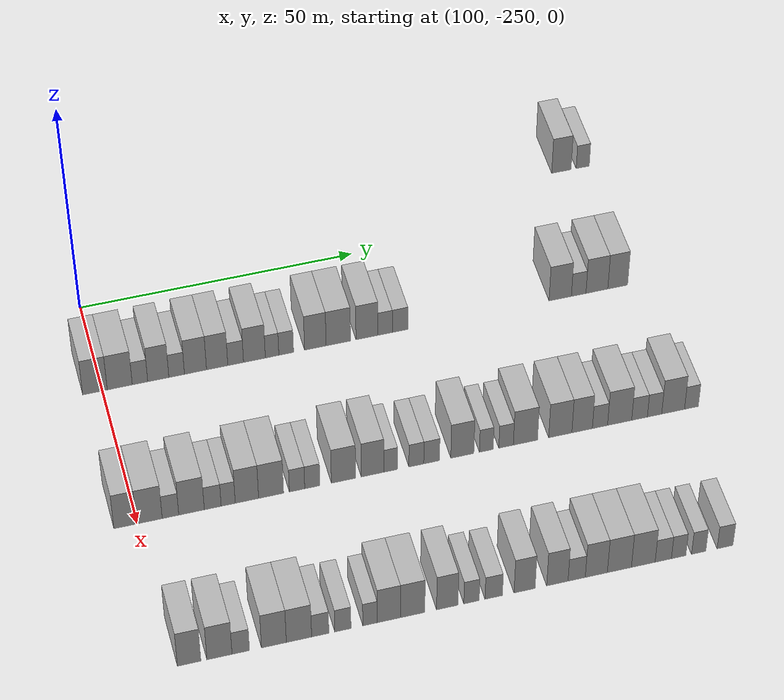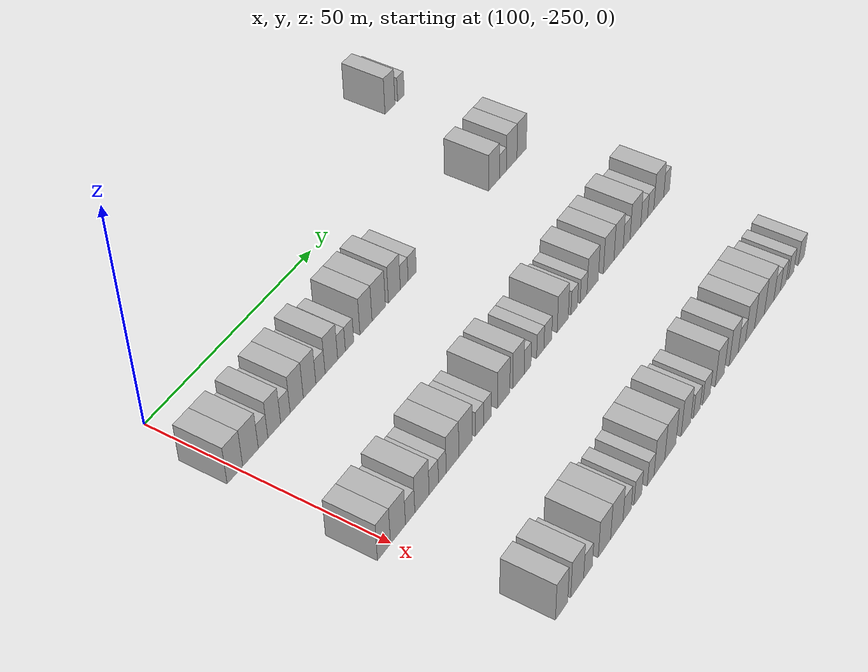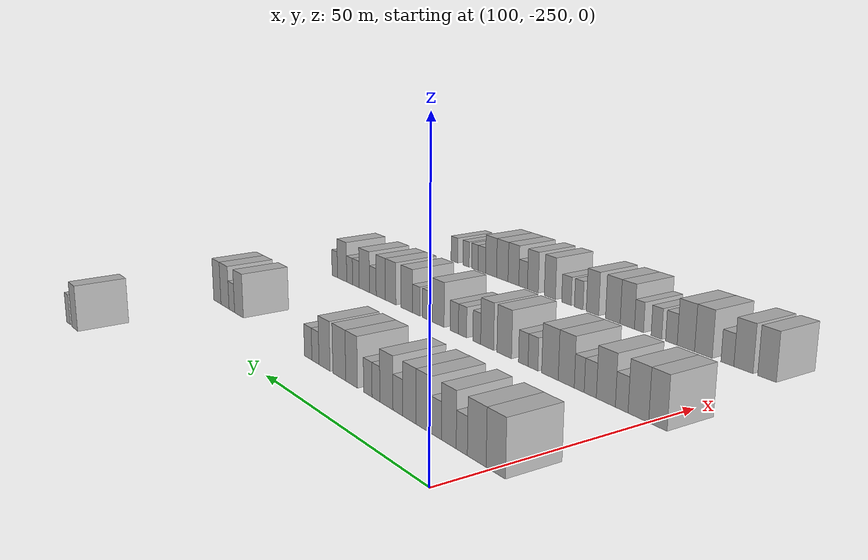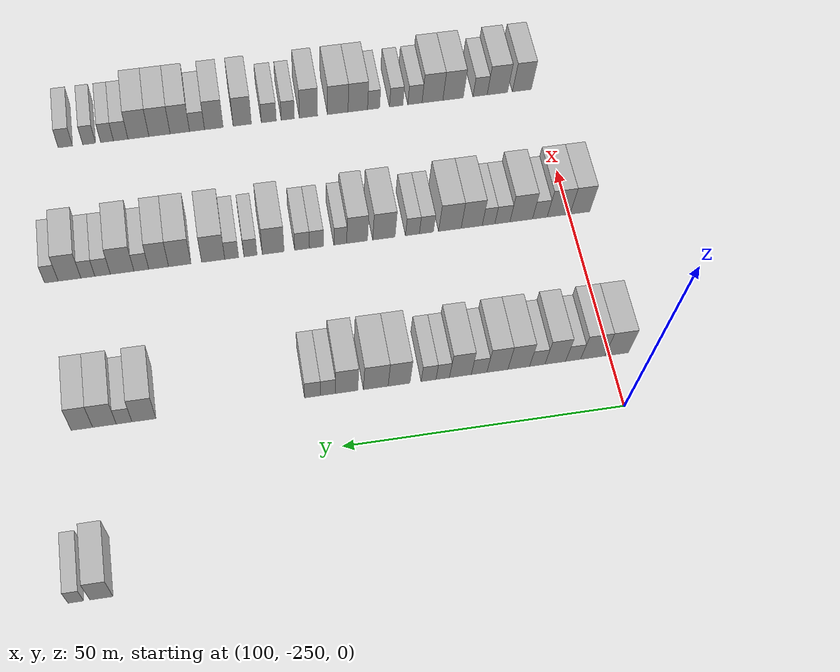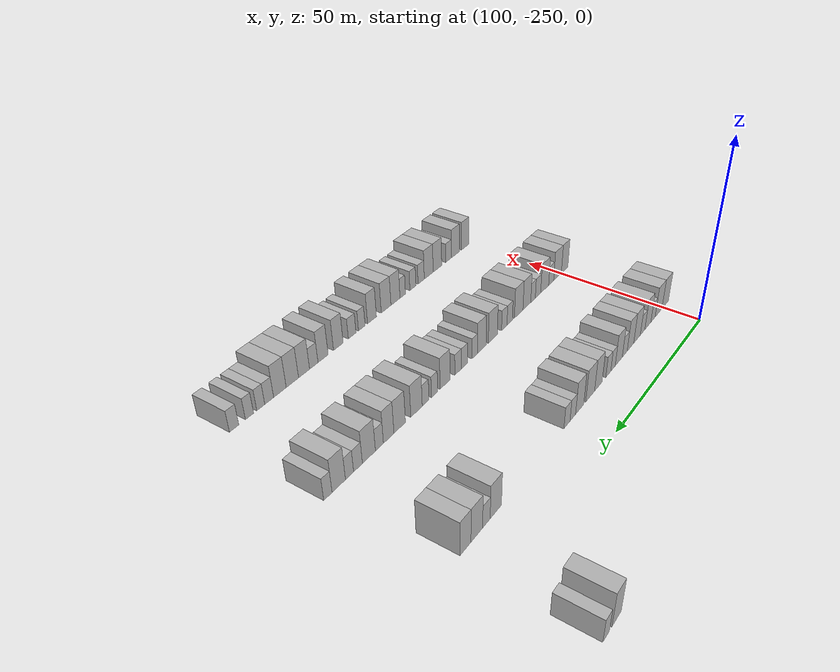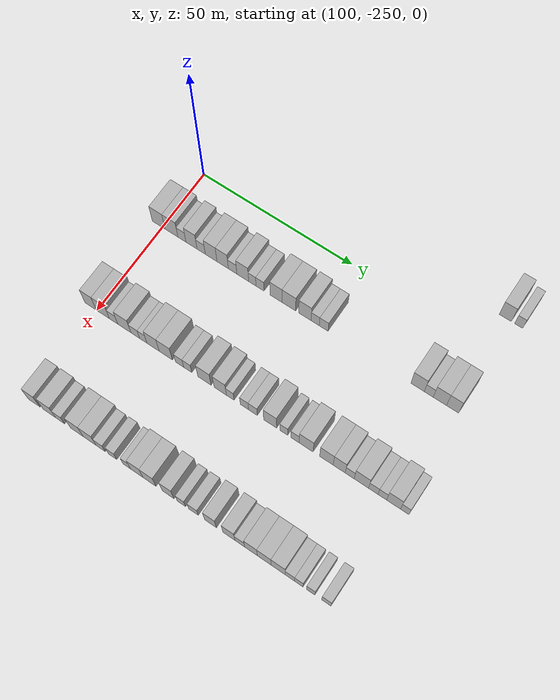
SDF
<sdf version="1.6">
 <world name="default">
  <model name="building_531">
   <static>1</static>
   <pose>85.0000 -157.1569 0 0.000000 0.000000 0.000000</pose>
   <link name="link">
    <pose>0 0 4.50 0 0 0</pose>
    <collision name="collision"><geometry><box><size>10.0000 3.7469 9.0000</size></box></geometry></collision>
    <visual name="visual">
     <cast_shadows>0</cast_shadows>
     <geometry><box><size>10.0000 3.7469 9.0000</size></box></geometry>
     <material>
      <script>
       <uri>model://HANNAS_wall/materials/scripts</uri>
       <uri>model://HANNAS_wall/materials/textures</uri>
       <name>vrc/HANNAS_wall</name>
      </script>
     </material>
    </visual>
   </link>
  </model>
  <model name="building_532">
   <static>1</static>
   <pose>85.0000 -153.0195 0 0.000000 0.000000 0.000000</pose>
   <link name="link">
    <pose>0 0 3.00 0 0 0</pose>
    <collision name="collision"><geometry><box><size>10.0000 2.5278 6.0000</size></box></geometry></collision>
    <visual name="visual">
     <cast_shadows>0</cast_shadows>
     <geometry><box><size>10.0000 2.5278 6.0000</size></box></geometry>
     <material>
      <script>
       <uri>model://HANNAS_wall/materials/scripts</uri>
       <uri>model://HANNAS_wall/materials/textures</uri>
       <name>vrc/HANNAS_wall</name>
      </script>
     </material>
    </visual>
   </link>
  </model>
  <model name="building_736">
   <static>1</static>
   <pose>115.0000 -251.2618 0 0.000000 0.000000 0.000000</pose>
   <link name="link">
    <pose>0 0 4.50 0 0 0</pose>
    <collision name="collision"><geometry><box><size>10.0000 4.3670 9.0000</size></box></geometry></collision>
    <visual name="visual">
     <cast_shadows>0</cast_shadows>
     <geometry><box><size>10.0000 4.3670 9.0000</size></box></geometry>
     <material>
      <script>
       <uri>model://HANNAS_wall/materials/scripts</uri>
       <uri>model://HANNAS_wall/materials/textures</uri>
       <name>vrc/HANNAS_wall</name>
      </script>
     </material>
    </visual>
   </link>
  </model>
  <model name="building_737">
   <static>1</static>
   <pose>115.0000 -246.8488 0 0.000000 0.000000 0.000000</pose>
   <link name="link">
    <pose>0 0 4.50 0 0 0</pose>
    <collision name="collision"><geometry><box><size>10.0000 4.4591 9.0000</size></box></geometry></collision>
    <visual name="visual">
     <cast_shadows>0</cast_shadows>
     <geometry><box><size>10.0000 4.4591 9.0000</size></box></geometry>
     <material>
      <script>
       <uri>model://HANNAS_wall/materials/scripts</uri>
       <uri>model://HANNAS_wall/materials/textures</uri>
       <name>vrc/HANNAS_wall</name>
      </script>
     </material>
    </visual>
   </link>
  </model>
  <model name="building_738">
   <static>1</static>
   <pose>115.0000 -243.2430 0 0.000000 0.000000 0.000000</pose>
   <link name="link">
    <pose>0 0 3.00 0 0 0</pose>
    <collision name="collision"><geometry><box><size>10.0000 2.7524 6.0000</size></box></geometry></collision>
    <visual name="visual">
     <cast_shadows>0</cast_shadows>
     <geometry><box><size>10.0000 2.7524 6.0000</size></box></geometry>
     <material>
      <script>
       <uri>model://HANNAS_wall/materials/scripts</uri>
       <uri>model://HANNAS_wall/materials/textures</uri>
       <name>vrc/HANNAS_wall</name>
      </script>
     </material>
    </visual>
   </link>
  </model>
  <model name="building_739">
   <static>1</static>
   <pose>115.0000 -239.9782 0 0.000000 0.000000 0.000000</pose>
   <link name="link">
    <pose>0 0 4.50 0 0 0</pose>
    <collision name="collision"><geometry><box><size>10.0000 3.7771 9.0000</size></box></geometry></collision>
    <visual name="visual">
     <cast_shadows>0</cast_shadows>
     <geometry><box><size>10.0000 3.7771 9.0000</size></box></geometry>
     <material>
      <script>
       <uri>model://HANNAS_wall/materials/scripts</uri>
       <uri>model://HANNAS_wall/materials/textures</uri>
       <name>vrc/HANNAS_wall</name>
      </script>
     </material>
    </visual>
   </link>
  </model>
  <model name="building_740">
   <static>1</static>
   <pose>115.0000 -236.6905 0 0.000000 0.000000 0.000000</pose>
   <link name="link">
    <pose>0 0 3.00 0 0 0</pose>
    <collision name="collision"><geometry><box><size>10.0000 2.7982 6.0000</size></box></geometry></collision>
    <visual name="visual">
     <cast_shadows>0</cast_shadows>
     <geometry><box><size>10.0000 2.7982 6.0000</size></box></geometry>
     <material>
      <script>
       <uri>model://HANNAS_wall/materials/scripts</uri>
       <uri>model://HANNAS_wall/materials/textures</uri>
       <name>vrc/HANNAS_wall</name>
      </script>
     </material>
    </visual>
   </link>
  </model>
  <model name="building_741">
   <static>1</static>
   <pose>115.0000 -233.3121 0 0.000000 0.000000 0.000000</pose>
   <link name="link">
    <pose>0 0 4.50 0 0 0</pose>
    <collision name="collision"><geometry><box><size>10.0000 3.9586 9.0000</size></box></geometry></collision>
    <visual name="visual">
     <cast_shadows>0</cast_shadows>
     <geometry><box><size>10.0000 3.9586 9.0000</size></box></geometry>
     <material>
      <script>
       <uri>model://HANNAS_wall/materials/scripts</uri>
       <uri>model://HANNAS_wall/materials/textures</uri>
       <name>vrc/HANNAS_wall</name>
      </script>
     </material>
    </visual>
   </link>
  </model>
  <model name="building_742">
   <static>1</static>
   <pose>115.0000 -229.4182 0 0.000000 0.000000 0.000000</pose>
   <link name="link">
    <pose>0 0 4.50 0 0 0</pose>
    <collision name="collision"><geometry><box><size>10.0000 3.8293 9.0000</size></box></geometry></collision>
    <visual name="visual">
     <cast_shadows>0</cast_shadows>
     <geometry><box><size>10.0000 3.8293 9.0000</size></box></geometry>
     <material>
      <script>
       <uri>model://HANNAS_wall/materials/scripts</uri>
       <uri>model://HANNAS_wall/materials/textures</uri>
       <name>vrc/HANNAS_wall</name>
      </script>
     </material>
    </visual>
   </link>
  </model>
  <model name="building_743">
   <static>1</static>
   <pose>115.0000 -226.0865 0 0.000000 0.000000 0.000000</pose>
   <link name="link">
    <pose>0 0 3.00 0 0 0</pose>
    <collision name="collision"><geometry><box><size>10.0000 2.8341 6.0000</size></box></geometry></collision>
    <visual name="visual">
     <cast_shadows>0</cast_shadows>
     <geometry><box><size>10.0000 2.8341 6.0000</size></box></geometry>
     <material>
      <script>
       <uri>model://HANNAS_wall/materials/scripts</uri>
       <uri>model://HANNAS_wall/materials/textures</uri>
       <name>vrc/HANNAS_wall</name>
      </script>
     </material>
    </visual>
   </link>
  </model>
  <model name="building_744">
   <static>1</static>
   <pose>115.0000 -222.6949 0 0.000000 0.000000 0.000000</pose>
   <link name="link">
    <pose>0 0 4.50 0 0 0</pose>
    <collision name="collision"><geometry><box><size>10.0000 3.9492 9.0000</size></box></geometry></collision>
    <visual name="visual">
     <cast_shadows>0</cast_shadows>
     <geometry><box><size>10.0000 3.9492 9.0000</size></box></geometry>
     <material>
      <script>
       <uri>model://HANNAS_wall/materials/scripts</uri>
       <uri>model://HANNAS_wall/materials/textures</uri>
       <name>vrc/HANNAS_wall</name>
      </script>
     </material>
    </visual>
   </link>
  </model>
  <model name="building_745">
   <static>1</static>
   <pose>115.0000 -219.5034 0 0.000000 0.000000 0.000000</pose>
   <link name="link">
    <pose>0 0 3.00 0 0 0</pose>
    <collision name="collision"><geometry><box><size>10.0000 2.4337 6.0000</size></box></geometry></collision>
    <visual name="visual">
     <cast_shadows>0</cast_shadows>
     <geometry><box><size>10.0000 2.4337 6.0000</size></box></geometry>
     <material>
      <script>
       <uri>model://HANNAS_wall/materials/scripts</uri>
       <uri>model://HANNAS_wall/materials/textures</uri>
       <name>vrc/HANNAS_wall</name>
      </script>
     </material>
    </visual>
   </link>
  </model>
  <model name="building_746">
   <static>1</static>
   <pose>115.0000 -216.9486 0 0.000000 0.000000 0.000000</pose>
   <link name="link">
    <pose>0 0 3.00 0 0 0</pose>
    <collision name="collision"><geometry><box><size>10.0000 2.6760 6.0000</size></box></geometry></collision>
    <visual name="visual">
     <cast_shadows>0</cast_shadows>
     <geometry><box><size>10.0000 2.6760 6.0000</size></box></geometry>
     <material>
      <script>
       <uri>model://HANNAS_wall/materials/scripts</uri>
       <uri>model://HANNAS_wall/materials/textures</uri>
       <name>vrc/HANNAS_wall</name>
      </script>
     </material>
    </visual>
   </link>
  </model>
  <model name="building_747">
   <static>1</static>
   <pose>115.0000 -211.6499 0 0.000000 0.000000 0.000000</pose>
   <link name="link">
    <pose>0 0 4.50 0 0 0</pose>
    <collision name="collision"><geometry><box><size>10.0000 3.9215 9.0000</size></box></geometry></collision>
    <visual name="visual">
     <cast_shadows>0</cast_shadows>
     <geometry><box><size>10.0000 3.9215 9.0000</size></box></geometry>
     <material>
      <script>
       <uri>model://HANNAS_wall/materials/scripts</uri>
       <uri>model://HANNAS_wall/materials/textures</uri>
       <name>vrc/HANNAS_wall</name>
      </script>
     </material>
    </visual>
   </link>
  </model>
  <model name="building_748">
   <static>1</static>
   <pose>115.0000 -207.4661 0 0.000000 0.000000 0.000000</pose>
   <link name="link">
    <pose>0 0 4.50 0 0 0</pose>
    <collision name="collision"><geometry><box><size>10.0000 4.4460 9.0000</size></box></geometry></collision>
    <visual name="visual">
     <cast_shadows>0</cast_shadows>
     <geometry><box><size>10.0000 4.4460 9.0000</size></box></geometry>
     <material>
      <script>
       <uri>model://HANNAS_wall/materials/scripts</uri>
       <uri>model://HANNAS_wall/materials/textures</uri>
       <name>vrc/HANNAS_wall</name>
      </script>
     </material>
    </visual>
   </link>
  </model>
  <model name="building_749">
   <static>1</static>
   <pose>115.0000 -202.2381 0 0.000000 0.000000 0.000000</pose>
   <link name="link">
    <pose>0 0 4.50 0 0 0</pose>
    <collision name="collision"><geometry><box><size>10.0000 4.0099 9.0000</size></box></geometry></collision>
    <visual name="visual">
     <cast_shadows>0</cast_shadows>
     <geometry><box><size>10.0000 4.0099 9.0000</size></box></geometry>
     <material>
      <script>
       <uri>model://HANNAS_wall/materials/scripts</uri>
       <uri>model://HANNAS_wall/materials/textures</uri>
       <name>vrc/HANNAS_wall</name>
      </script>
     </material>
    </visual>
   </link>
  </model>
  <model name="building_750">
   <static>1</static>
   <pose>115.0000 -198.9101 0 0.000000 0.000000 0.000000</pose>
   <link name="link">
    <pose>0 0 3.00 0 0 0</pose>
    <collision name="collision"><geometry><box><size>10.0000 2.6460 6.0000</size></box></geometry></collision>
    <visual name="visual">
     <cast_shadows>0</cast_shadows>
     <geometry><box><size>10.0000 2.6460 6.0000</size></box></geometry>
     <material>
      <script>
       <uri>model://HANNAS_wall/materials/scripts</uri>
       <uri>model://HANNAS_wall/materials/textures</uri>
       <name>vrc/HANNAS_wall</name>
      </script>
     </material>
    </visual>
   </link>
  </model>
  <model name="building_751">
   <static>1</static>
   <pose>115.0000 -196.1701 0 0.000000 0.000000 0.000000</pose>
   <link name="link">
    <pose>0 0 3.00 0 0 0</pose>
    <collision name="collision"><geometry><box><size>10.0000 2.8340 6.0000</size></box></geometry></collision>
    <visual name="visual">
     <cast_shadows>0</cast_shadows>
     <geometry><box><size>10.0000 2.8340 6.0000</size></box></geometry>
     <material>
      <script>
       <uri>model://HANNAS_wall/materials/scripts</uri>
       <uri>model://HANNAS_wall/materials/textures</uri>
       <name>vrc/HANNAS_wall</name>
      </script>
     </material>
    </visual>
   </link>
  </model>
  <model name="building_752">
   <static>1</static>
   <pose>115.0000 -166.4770 0 0.000000 0.000000 0.000000</pose>
   <link name="link">
    <pose>0 0 4.50 0 0 0</pose>
    <collision name="collision"><geometry><box><size>10.0000 4.1840 9.0000</size></box></geometry></collision>
    <visual name="visual">
     <cast_shadows>0</cast_shadows>
     <geometry><box><size>10.0000 4.1840 9.0000</size></box></geometry>
     <material>
      <script>
       <uri>model://HANNAS_wall/materials/scripts</uri>
       <uri>model://HANNAS_wall/materials/textures</uri>
       <name>vrc/HANNAS_wall</name>
      </script>
     </material>
    </visual>
   </link>
  </model>
  <model name="building_753">
   <static>1</static>
   <pose>115.0000 -163.0198 0 0.000000 0.000000 0.000000</pose>
   <link name="link">
    <pose>0 0 3.00 0 0 0</pose>
    <collision name="collision"><geometry><box><size>10.0000 2.7303 6.0000</size></box></geometry></collision>
    <visual name="visual">
     <cast_shadows>0</cast_shadows>
     <geometry><box><size>10.0000 2.7303 6.0000</size></box></geometry>
     <material>
      <script>
       <uri>model://HANNAS_wall/materials/scripts</uri>
       <uri>model://HANNAS_wall/materials/textures</uri>
       <name>vrc/HANNAS_wall</name>
      </script>
     </material>
    </visual>
   </link>
  </model>
  <model name="building_754">
   <static>1</static>
   <pose>115.0000 -159.6044 0 0.000000 0.000000 0.000000</pose>
   <link name="link">
    <pose>0 0 4.50 0 0 0</pose>
    <collision name="collision"><geometry><box><size>10.0000 4.1006 9.0000</size></box></geometry></collision>
    <visual name="visual">
     <cast_shadows>0</cast_shadows>
     <geometry><box><size>10.0000 4.1006 9.0000</size></box></geometry>
     <material>
      <script>
       <uri>model://HANNAS_wall/materials/scripts</uri>
       <uri>model://HANNAS_wall/materials/textures</uri>
       <name>vrc/HANNAS_wall</name>
      </script>
     </material>
    </visual>
   </link>
  </model>
  <model name="building_755">
   <static>1</static>
   <pose>115.0000 -155.6981 0 0.000000 0.000000 0.000000</pose>
   <link name="link">
    <pose>0 0 4.50 0 0 0</pose>
    <collision name="collision"><geometry><box><size>10.0000 3.7119 9.0000</size></box></geometry></collision>
    <visual name="visual">
     <cast_shadows>0</cast_shadows>
     <geometry><box><size>10.0000 3.7119 9.0000</size></box></geometry>
     <material>
      <script>
       <uri>model://HANNAS_wall/materials/scripts</uri>
       <uri>model://HANNAS_wall/materials/textures</uri>
       <name>vrc/HANNAS_wall</name>
      </script>
     </material>
    </visual>
   </link>
  </model>
  <model name="building_964">
   <static>1</static>
   <pose>145.0000 -252.0776 0 0.000000 0.000000 0.000000</pose>
   <link name="link">
    <pose>0 0 4.50 0 0 0</pose>
    <collision name="collision"><geometry><box><size>10.0000 3.8484 9.0000</size></box></geometry></collision>
    <visual name="visual">
     <cast_shadows>0</cast_shadows>
     <geometry><box><size>10.0000 3.8484 9.0000</size></box></geometry>
     <material>
      <script>
       <uri>model://HANNAS_wall/materials/scripts</uri>
       <uri>model://HANNAS_wall/materials/textures</uri>
       <name>vrc/HANNAS_wall</name>
      </script>
     </material>
    </visual>
   </link>
  </model>
  <model name="building_965">
   <static>1</static>
   <pose>145.0000 -247.9197 0 0.000000 0.000000 0.000000</pose>
   <link name="link">
    <pose>0 0 4.50 0 0 0</pose>
    <collision name="collision"><geometry><box><size>10.0000 4.4674 9.0000</size></box></geometry></collision>
    <visual name="visual">
     <cast_shadows>0</cast_shadows>
     <geometry><box><size>10.0000 4.4674 9.0000</size></box></geometry>
     <material>
      <script>
       <uri>model://HANNAS_wall/materials/scripts</uri>
       <uri>model://HANNAS_wall/materials/textures</uri>
       <name>vrc/HANNAS_wall</name>
      </script>
     </material>
    </visual>
   </link>
  </model>
  <model name="building_966">
   <static>1</static>
   <pose>145.0000 -244.2596 0 0.000000 0.000000 0.000000</pose>
   <link name="link">
    <pose>0 0 3.00 0 0 0</pose>
    <collision name="collision"><geometry><box><size>10.0000 2.8528 6.0000</size></box></geometry></collision>
    <visual name="visual">
     <cast_shadows>0</cast_shadows>
     <geometry><box><size>10.0000 2.8528 6.0000</size></box></geometry>
     <material>
      <script>
       <uri>model://HANNAS_wall/materials/scripts</uri>
       <uri>model://HANNAS_wall/materials/textures</uri>
       <name>vrc/HANNAS_wall</name>
      </script>
     </material>
    </visual>
   </link>
  </model>
  <model name="building_967">
   <static>1</static>
   <pose>145.0000 -240.6260 0 0.000000 0.000000 0.000000</pose>
   <link name="link">
    <pose>0 0 4.50 0 0 0</pose>
    <collision name="collision"><geometry><box><size>10.0000 4.4144 9.0000</size></box></geometry></collision>
    <visual name="visual">
     <cast_shadows>0</cast_shadows>
     <geometry><box><size>10.0000 4.4144 9.0000</size></box></geometry>
     <material>
      <script>
       <uri>model://HANNAS_wall/materials/scripts</uri>
       <uri>model://HANNAS_wall/materials/textures</uri>
       <name>vrc/HANNAS_wall</name>
      </script>
     </material>
    </visual>
   </link>
  </model>
  <model name="building_968">
   <static>1</static>
   <pose>145.0000 -236.9592 0 0.000000 0.000000 0.000000</pose>
   <link name="link">
    <pose>0 0 3.00 0 0 0</pose>
    <collision name="collision"><geometry><box><size>10.0000 2.9190 6.0000</size></box></geometry></collision>
    <visual name="visual">
     <cast_shadows>0</cast_shadows>
     <geometry><box><size>10.0000 2.9190 6.0000</size></box></geometry>
     <material>
      <script>
       <uri>model://HANNAS_wall/materials/scripts</uri>
       <uri>model://HANNAS_wall/materials/textures</uri>
       <name>vrc/HANNAS_wall</name>
      </script>
     </material>
    </visual>
   </link>
  </model>
  <model name="building_969">
   <static>1</static>
   <pose>145.0000 -234.2791 0 0.000000 0.000000 0.000000</pose>
   <link name="link">
    <pose>0 0 3.00 0 0 0</pose>
    <collision name="collision"><geometry><box><size>10.0000 2.4412 6.0000</size></box></geometry></collision>
    <visual name="visual">
     <cast_shadows>0</cast_shadows>
     <geometry><box><size>10.0000 2.4412 6.0000</size></box></geometry>
     <material>
      <script>
       <uri>model://HANNAS_wall/materials/scripts</uri>
       <uri>model://HANNAS_wall/materials/textures</uri>
       <name>vrc/HANNAS_wall</name>
      </script>
     </material>
    </visual>
   </link>
  </model>
  <model name="building_970">
   <static>1</static>
   <pose>145.0000 -231.0264 0 0.000000 0.000000 0.000000</pose>
   <link name="link">
    <pose>0 0 4.50 0 0 0</pose>
    <collision name="collision"><geometry><box><size>10.0000 4.0643 9.0000</size></box></geometry></collision>
    <visual name="visual">
     <cast_shadows>0</cast_shadows>
     <geometry><box><size>10.0000 4.0643 9.0000</size></box></geometry>
     <material>
      <script>
       <uri>model://HANNAS_wall/materials/scripts</uri>
       <uri>model://HANNAS_wall/materials/textures</uri>
       <name>vrc/HANNAS_wall</name>
      </script>
     </material>
    </visual>
   </link>
  </model>
  <model name="building_971">
   <static>1</static>
   <pose>145.0000 -226.8149 0 0.000000 0.000000 0.000000</pose>
   <link name="link">
    <pose>0 0 4.50 0 0 0</pose>
    <collision name="collision"><geometry><box><size>10.0000 4.3588 9.0000</size></box></geometry></collision>
    <visual name="visual">
     <cast_shadows>0</cast_shadows>
     <geometry><box><size>10.0000 4.3588 9.0000</size></box></geometry>
     <material>
      <script>
       <uri>model://HANNAS_wall/materials/scripts</uri>
       <uri>model://HANNAS_wall/materials/textures</uri>
       <name>vrc/HANNAS_wall</name>
      </script>
     </material>
    </visual>
   </link>
  </model>
  <model name="building_972">
   <static>1</static>
   <pose>145.0000 -222.2878 0 0.000000 0.000000 0.000000</pose>
   <link name="link">
    <pose>0 0 3.00 0 0 0</pose>
    <collision name="collision"><geometry><box><size>10.0000 2.6953 6.0000</size></box></geometry></collision>
    <visual name="visual">
     <cast_shadows>0</cast_shadows>
     <geometry><box><size>10.0000 2.6953 6.0000</size></box></geometry>
     <material>
      <script>
       <uri>model://HANNAS_wall/materials/scripts</uri>
       <uri>model://HANNAS_wall/materials/textures</uri>
       <name>vrc/HANNAS_wall</name>
      </script>
     </material>
    </visual>
   </link>
  </model>
  <model name="building_973">
   <static>1</static>
   <pose>145.0000 -219.6061 0 0.000000 0.000000 0.000000</pose>
   <link name="link">
    <pose>0 0 3.00 0 0 0</pose>
    <collision name="collision"><geometry><box><size>10.0000 2.6683 6.0000</size></box></geometry></collision>
    <visual name="visual">
     <cast_shadows>0</cast_shadows>
     <geometry><box><size>10.0000 2.6683 6.0000</size></box></geometry>
     <material>
      <script>
       <uri>model://HANNAS_wall/materials/scripts</uri>
       <uri>model://HANNAS_wall/materials/textures</uri>
       <name>vrc/HANNAS_wall</name>
      </script>
     </material>
    </visual>
   </link>
  </model>
  <model name="building_974">
   <static>1</static>
   <pose>145.0000 -214.1360 0 0.000000 0.000000 0.000000</pose>
   <link name="link">
    <pose>0 0 4.50 0 0 0</pose>
    <collision name="collision"><geometry><box><size>10.0000 4.2719 9.0000</size></box></geometry></collision>
    <visual name="visual">
     <cast_shadows>0</cast_shadows>
     <geometry><box><size>10.0000 4.2719 9.0000</size></box></geometry>
     <material>
      <script>
       <uri>model://HANNAS_wall/materials/scripts</uri>
       <uri>model://HANNAS_wall/materials/textures</uri>
       <name>vrc/HANNAS_wall</name>
      </script>
     </material>
    </visual>
   </link>
  </model>
  <model name="building_975">
   <static>1</static>
   <pose>145.0000 -209.0221 0 0.000000 0.000000 0.000000</pose>
   <link name="link">
    <pose>0 0 4.50 0 0 0</pose>
    <collision name="collision"><geometry><box><size>10.0000 3.9557 9.0000</size></box></geometry></collision>
    <visual name="visual">
     <cast_shadows>0</cast_shadows>
     <geometry><box><size>10.0000 3.9557 9.0000</size></box></geometry>
     <material>
      <script>
       <uri>model://HANNAS_wall/materials/scripts</uri>
       <uri>model://HANNAS_wall/materials/textures</uri>
       <name>vrc/HANNAS_wall</name>
      </script>
     </material>
    </visual>
   </link>
  </model>
  <model name="building_976">
   <static>1</static>
   <pose>145.0000 -205.8235 0 0.000000 0.000000 0.000000</pose>
   <link name="link">
    <pose>0 0 3.00 0 0 0</pose>
    <collision name="collision"><geometry><box><size>10.0000 2.4415 6.0000</size></box></geometry></collision>
    <visual name="visual">
     <cast_shadows>0</cast_shadows>
     <geometry><box><size>10.0000 2.4415 6.0000</size></box></geometry>
     <material>
      <script>
       <uri>model://HANNAS_wall/materials/scripts</uri>
       <uri>model://HANNAS_wall/materials/textures</uri>
       <name>vrc/HANNAS_wall</name>
      </script>
     </material>
    </visual>
   </link>
  </model>
  <model name="building_977">
   <static>1</static>
   <pose>145.0000 -201.2860 0 0.000000 0.000000 0.000000</pose>
   <link name="link">
    <pose>0 0 3.00 0 0 0</pose>
    <collision name="collision"><geometry><box><size>10.0000 2.6336 6.0000</size></box></geometry></collision>
    <visual name="visual">
     <cast_shadows>0</cast_shadows>
     <geometry><box><size>10.0000 2.6336 6.0000</size></box></geometry>
     <material>
      <script>
       <uri>model://HANNAS_wall/materials/scripts</uri>
       <uri>model://HANNAS_wall/materials/textures</uri>
       <name>vrc/HANNAS_wall</name>
      </script>
     </material>
    </visual>
   </link>
  </model>
  <model name="building_978">
   <static>1</static>
   <pose>145.0000 -198.5667 0 0.000000 0.000000 0.000000</pose>
   <link name="link">
    <pose>0 0 3.00 0 0 0</pose>
    <collision name="collision"><geometry><box><size>10.0000 2.8049 6.0000</size></box></geometry></collision>
    <visual name="visual">
     <cast_shadows>0</cast_shadows>
     <geometry><box><size>10.0000 2.8049 6.0000</size></box></geometry>
     <material>
      <script>
       <uri>model://HANNAS_wall/materials/scripts</uri>
       <uri>model://HANNAS_wall/materials/textures</uri>
       <name>vrc/HANNAS_wall</name>
      </script>
     </material>
    </visual>
   </link>
  </model>
  <model name="building_979">
   <static>1</static>
   <pose>145.0000 -193.1160 0 0.000000 0.000000 0.000000</pose>
   <link name="link">
    <pose>0 0 4.50 0 0 0</pose>
    <collision name="collision"><geometry><box><size>10.0000 4.0964 9.0000</size></box></geometry></collision>
    <visual name="visual">
     <cast_shadows>0</cast_shadows>
     <geometry><box><size>10.0000 4.0964 9.0000</size></box></geometry>
     <material>
      <script>
       <uri>model://HANNAS_wall/materials/scripts</uri>
       <uri>model://HANNAS_wall/materials/textures</uri>
       <name>vrc/HANNAS_wall</name>
      </script>
     </material>
    </visual>
   </link>
  </model>
  <model name="building_980">
   <static>1</static>
   <pose>145.0000 -188.8352 0 0.000000 0.000000 0.000000</pose>
   <link name="link">
    <pose>0 0 3.00 0 0 0</pose>
    <collision name="collision"><geometry><box><size>10.0000 2.4653 6.0000</size></box></geometry></collision>
    <visual name="visual">
     <cast_shadows>0</cast_shadows>
     <geometry><box><size>10.0000 2.4653 6.0000</size></box></geometry>
     <material>
      <script>
       <uri>model://HANNAS_wall/materials/scripts</uri>
       <uri>model://HANNAS_wall/materials/textures</uri>
       <name>vrc/HANNAS_wall</name>
      </script>
     </material>
    </visual>
   </link>
  </model>
  <model name="building_981">
   <static>1</static>
   <pose>145.0000 -185.3016 0 0.000000 0.000000 0.000000</pose>
   <link name="link">
    <pose>0 0 3.00 0 0 0</pose>
    <collision name="collision"><geometry><box><size>10.0000 2.6017 6.0000</size></box></geometry></collision>
    <visual name="visual">
     <cast_shadows>0</cast_shadows>
     <geometry><box><size>10.0000 2.6017 6.0000</size></box></geometry>
     <material>
      <script>
       <uri>model://HANNAS_wall/materials/scripts</uri>
       <uri>model://HANNAS_wall/materials/textures</uri>
       <name>vrc/HANNAS_wall</name>
      </script>
     </material>
    </visual>
   </link>
  </model>
  <model name="building_982">
   <static>1</static>
   <pose>145.0000 -181.8311 0 0.000000 0.000000 0.000000</pose>
   <link name="link">
    <pose>0 0 4.50 0 0 0</pose>
    <collision name="collision"><geometry><box><size>10.0000 4.3393 9.0000</size></box></geometry></collision>
    <visual name="visual">
     <cast_shadows>0</cast_shadows>
     <geometry><box><size>10.0000 4.3393 9.0000</size></box></geometry>
     <material>
      <script>
       <uri>model://HANNAS_wall/materials/scripts</uri>
       <uri>model://HANNAS_wall/materials/textures</uri>
       <name>vrc/HANNAS_wall</name>
      </script>
     </material>
    </visual>
   </link>
  </model>
  <model name="building_983">
   <static>1</static>
   <pose>145.0000 -175.5718 0 0.000000 0.000000 0.000000</pose>
   <link name="link">
    <pose>0 0 4.50 0 0 0</pose>
    <collision name="collision"><geometry><box><size>10.0000 4.1794 9.0000</size></box></geometry></collision>
    <visual name="visual">
     <cast_shadows>0</cast_shadows>
     <geometry><box><size>10.0000 4.1794 9.0000</size></box></geometry>
     <material>
      <script>
       <uri>model://HANNAS_wall/materials/scripts</uri>
       <uri>model://HANNAS_wall/materials/textures</uri>
       <name>vrc/HANNAS_wall</name>
      </script>
     </material>
    </visual>
   </link>
  </model>
  <model name="building_984">
   <static>1</static>
   <pose>145.0000 -171.6326 0 0.000000 0.000000 0.000000</pose>
   <link name="link">
    <pose>0 0 4.50 0 0 0</pose>
    <collision name="collision"><geometry><box><size>10.0000 3.6988 9.0000</size></box></geometry></collision>
    <visual name="visual">
     <cast_shadows>0</cast_shadows>
     <geometry><box><size>10.0000 3.6988 9.0000</size></box></geometry>
     <material>
      <script>
       <uri>model://HANNAS_wall/materials/scripts</uri>
       <uri>model://HANNAS_wall/materials/textures</uri>
       <name>vrc/HANNAS_wall</name>
      </script>
     </material>
    </visual>
   </link>
  </model>
  <model name="building_985">
   <static>1</static>
   <pose>145.0000 -168.4068 0 0.000000 0.000000 0.000000</pose>
   <link name="link">
    <pose>0 0 3.00 0 0 0</pose>
    <collision name="collision"><geometry><box><size>10.0000 2.7528 6.0000</size></box></geometry></collision>
    <visual name="visual">
     <cast_shadows>0</cast_shadows>
     <geometry><box><size>10.0000 2.7528 6.0000</size></box></geometry>
     <material>
      <script>
       <uri>model://HANNAS_wall/materials/scripts</uri>
       <uri>model://HANNAS_wall/materials/textures</uri>
       <name>vrc/HANNAS_wall</name>
      </script>
     </material>
    </visual>
   </link>
  </model>
  <model name="building_986">
   <static>1</static>
   <pose>145.0000 -164.8436 0 0.000000 0.000000 0.000000</pose>
   <link name="link">
    <pose>0 0 4.50 0 0 0</pose>
    <collision name="collision"><geometry><box><size>10.0000 4.3737 9.0000</size></box></geometry></collision>
    <visual name="visual">
     <cast_shadows>0</cast_shadows>
     <geometry><box><size>10.0000 4.3737 9.0000</size></box></geometry>
     <material>
      <script>
       <uri>model://HANNAS_wall/materials/scripts</uri>
       <uri>model://HANNAS_wall/materials/textures</uri>
       <name>vrc/HANNAS_wall</name>
      </script>
     </material>
    </visual>
   </link>
  </model>
  <model name="building_987">
   <static>1</static>
   <pose>145.0000 -161.2282 0 0.000000 0.000000 0.000000</pose>
   <link name="link">
    <pose>0 0 3.00 0 0 0</pose>
    <collision name="collision"><geometry><box><size>10.0000 2.8570 6.0000</size></box></geometry></collision>
    <visual name="visual">
     <cast_shadows>0</cast_shadows>
     <geometry><box><size>10.0000 2.8570 6.0000</size></box></geometry>
     <material>
      <script>
       <uri>model://HANNAS_wall/materials/scripts</uri>
       <uri>model://HANNAS_wall/materials/textures</uri>
       <name>vrc/HANNAS_wall</name>
      </script>
     </material>
    </visual>
   </link>
  </model>
  <model name="building_988">
   <static>1</static>
   <pose>145.0000 -158.4980 0 0.000000 0.000000 0.000000</pose>
   <link name="link">
    <pose>0 0 3.00 0 0 0</pose>
    <collision name="collision"><geometry><box><size>10.0000 2.6034 6.0000</size></box></geometry></collision>
    <visual name="visual">
     <cast_shadows>0</cast_shadows>
     <geometry><box><size>10.0000 2.6034 6.0000</size></box></geometry>
     <material>
      <script>
       <uri>model://HANNAS_wall/materials/scripts</uri>
       <uri>model://HANNAS_wall/materials/textures</uri>
       <name>vrc/HANNAS_wall</name>
      </script>
     </material>
    </visual>
   </link>
  </model>
  <model name="building_989">
   <static>1</static>
   <pose>145.0000 -155.1126 0 0.000000 0.000000 0.000000</pose>
   <link name="link">
    <pose>0 0 4.50 0 0 0</pose>
    <collision name="collision"><geometry><box><size>10.0000 4.1673 9.0000</size></box></geometry></collision>
    <visual name="visual">
     <cast_shadows>0</cast_shadows>
     <geometry><box><size>10.0000 4.1673 9.0000</size></box></geometry>
     <material>
      <script>
       <uri>model://HANNAS_wall/materials/scripts</uri>
       <uri>model://HANNAS_wall/materials/textures</uri>
       <name>vrc/HANNAS_wall</name>
      </script>
     </material>
    </visual>
   </link>
  </model>
  <model name="building_990">
   <static>1</static>
   <pose>145.0000 -151.7691 0 0.000000 0.000000 0.000000</pose>
   <link name="link">
    <pose>0 0 3.00 0 0 0</pose>
    <collision name="collision"><geometry><box><size>10.0000 2.5197 6.0000</size></box></geometry></collision>
    <visual name="visual">
     <cast_shadows>0</cast_shadows>
     <geometry><box><size>10.0000 2.5197 6.0000</size></box></geometry>
     <material>
      <script>
       <uri>model://HANNAS_wall/materials/scripts</uri>
       <uri>model://HANNAS_wall/materials/textures</uri>
       <name>vrc/HANNAS_wall</name>
      </script>
     </material>
    </visual>
   </link>
  </model>
  <model name="building_1193">
   <static>1</static>
   <pose>175.0000 -247.6301 0 0.000000 0.000000 0.000000</pose>
   <link name="link">
    <pose>0 0 4.50 0 0 0</pose>
    <collision name="collision"><geometry><box><size>10.0000 3.9073 9.0000</size></box></geometry></collision>
    <visual name="visual">
     <cast_shadows>0</cast_shadows>
     <geometry><box><size>10.0000 3.9073 9.0000</size></box></geometry>
     <material>
      <script>
       <uri>model://HANNAS_wall/materials/scripts</uri>
       <uri>model://HANNAS_wall/materials/textures</uri>
       <name>vrc/HANNAS_wall</name>
      </script>
     </material>
    </visual>
   </link>
  </model>
  <model name="building_1194">
   <static>1</static>
   <pose>175.0000 -242.5788 0 0.000000 0.000000 0.000000</pose>
   <link name="link">
    <pose>0 0 4.50 0 0 0</pose>
    <collision name="collision"><geometry><box><size>10.0000 4.1952 9.0000</size></box></geometry></collision>
    <visual name="visual">
     <cast_shadows>0</cast_shadows>
     <geometry><box><size>10.0000 4.1952 9.0000</size></box></geometry>
     <material>
      <script>
       <uri>model://HANNAS_wall/materials/scripts</uri>
       <uri>model://HANNAS_wall/materials/textures</uri>
       <name>vrc/HANNAS_wall</name>
      </script>
     </material>
    </visual>
   </link>
  </model>
  <model name="building_1195">
   <static>1</static>
   <pose>175.0000 -239.0244 0 0.000000 0.000000 0.000000</pose>
   <link name="link">
    <pose>0 0 3.00 0 0 0</pose>
    <collision name="collision"><geometry><box><size>10.0000 2.9137 6.0000</size></box></geometry></collision>
    <visual name="visual">
     <cast_shadows>0</cast_shadows>
     <geometry><box><size>10.0000 2.9137 6.0000</size></box></geometry>
     <material>
      <script>
       <uri>model://HANNAS_wall/materials/scripts</uri>
       <uri>model://HANNAS_wall/materials/textures</uri>
       <name>vrc/HANNAS_wall</name>
      </script>
     </material>
    </visual>
   </link>
  </model>
  <model name="building_1196">
   <static>1</static>
   <pose>175.0000 -233.4803 0 0.000000 0.000000 0.000000</pose>
   <link name="link">
    <pose>0 0 4.50 0 0 0</pose>
    <collision name="collision"><geometry><box><size>10.0000 4.1746 9.0000</size></box></geometry></collision>
    <visual name="visual">
     <cast_shadows>0</cast_shadows>
     <geometry><box><size>10.0000 4.1746 9.0000</size></box></geometry>
     <material>
      <script>
       <uri>model://HANNAS_wall/materials/scripts</uri>
       <uri>model://HANNAS_wall/materials/textures</uri>
       <name>vrc/HANNAS_wall</name>
      </script>
     </material>
    </visual>
   </link>
  </model>
  <model name="building_1197">
   <static>1</static>
   <pose>175.0000 -229.2646 0 0.000000 0.000000 0.000000</pose>
   <link name="link">
    <pose>0 0 4.50 0 0 0</pose>
    <collision name="collision"><geometry><box><size>10.0000 4.2566 9.0000</size></box></geometry></collision>
    <visual name="visual">
     <cast_shadows>0</cast_shadows>
     <geometry><box><size>10.0000 4.2566 9.0000</size></box></geometry>
     <material>
      <script>
       <uri>model://HANNAS_wall/materials/scripts</uri>
       <uri>model://HANNAS_wall/materials/textures</uri>
       <name>vrc/HANNAS_wall</name>
      </script>
     </material>
    </visual>
   </link>
  </model>
  <model name="building_1198">
   <static>1</static>
   <pose>175.0000 -225.6838 0 0.000000 0.000000 0.000000</pose>
   <link name="link">
    <pose>0 0 3.00 0 0 0</pose>
    <collision name="collision"><geometry><box><size>10.0000 2.9052 6.0000</size></box></geometry></collision>
    <visual name="visual">
     <cast_shadows>0</cast_shadows>
     <geometry><box><size>10.0000 2.9052 6.0000</size></box></geometry>
     <material>
      <script>
       <uri>model://HANNAS_wall/materials/scripts</uri>
       <uri>model://HANNAS_wall/materials/textures</uri>
       <name>vrc/HANNAS_wall</name>
      </script>
     </material>
    </visual>
   </link>
  </model>
  <model name="building_1199">
   <static>1</static>
   <pose>175.0000 -221.8605 0 0.000000 0.000000 0.000000</pose>
   <link name="link">
    <pose>0 0 3.00 0 0 0</pose>
    <collision name="collision"><geometry><box><size>10.0000 2.7414 6.0000</size></box></geometry></collision>
    <visual name="visual">
     <cast_shadows>0</cast_shadows>
     <geometry><box><size>10.0000 2.7414 6.0000</size></box></geometry>
     <material>
      <script>
       <uri>model://HANNAS_wall/materials/scripts</uri>
       <uri>model://HANNAS_wall/materials/textures</uri>
       <name>vrc/HANNAS_wall</name>
      </script>
     </material>
    </visual>
   </link>
  </model>
  <model name="building_1200">
   <static>1</static>
   <pose>175.0000 -217.2654 0 0.000000 0.000000 0.000000</pose>
   <link name="link">
    <pose>0 0 3.00 0 0 0</pose>
    <collision name="collision"><geometry><box><size>10.0000 2.4488 6.0000</size></box></geometry></collision>
    <visual name="visual">
     <cast_shadows>0</cast_shadows>
     <geometry><box><size>10.0000 2.4488 6.0000</size></box></geometry>
     <material>
      <script>
       <uri>model://HANNAS_wall/materials/scripts</uri>
       <uri>model://HANNAS_wall/materials/textures</uri>
       <name>vrc/HANNAS_wall</name>
      </script>
     </material>
    </visual>
   </link>
  </model>
  <model name="building_1201">
   <static>1</static>
   <pose>175.0000 -214.0711 0 0.000000 0.000000 0.000000</pose>
   <link name="link">
    <pose>0 0 4.50 0 0 0</pose>
    <collision name="collision"><geometry><box><size>10.0000 3.9398 9.0000</size></box></geometry></collision>
    <visual name="visual">
     <cast_shadows>0</cast_shadows>
     <geometry><box><size>10.0000 3.9398 9.0000</size></box></geometry>
     <material>
      <script>
       <uri>model://HANNAS_wall/materials/scripts</uri>
       <uri>model://HANNAS_wall/materials/textures</uri>
       <name>vrc/HANNAS_wall</name>
      </script>
     </material>
    </visual>
   </link>
  </model>
  <model name="building_1202">
   <static>1</static>
   <pose>175.0000 -210.0254 0 0.000000 0.000000 0.000000</pose>
   <link name="link">
    <pose>0 0 4.50 0 0 0</pose>
    <collision name="collision"><geometry><box><size>10.0000 4.1515 9.0000</size></box></geometry></collision>
    <visual name="visual">
     <cast_shadows>0</cast_shadows>
     <geometry><box><size>10.0000 4.1515 9.0000</size></box></geometry>
     <material>
      <script>
       <uri>model://HANNAS_wall/materials/scripts</uri>
       <uri>model://HANNAS_wall/materials/textures</uri>
       <name>vrc/HANNAS_wall</name>
      </script>
     </material>
    </visual>
   </link>
  </model>
  <model name="building_1203">
   <static>1</static>
   <pose>175.0000 -204.1181 0 0.000000 0.000000 0.000000</pose>
   <link name="link">
    <pose>0 0 4.50 0 0 0</pose>
    <collision name="collision"><geometry><box><size>10.0000 3.6631 9.0000</size></box></geometry></collision>
    <visual name="visual">
     <cast_shadows>0</cast_shadows>
     <geometry><box><size>10.0000 3.6631 9.0000</size></box></geometry>
     <material>
      <script>
       <uri>model://HANNAS_wall/materials/scripts</uri>
       <uri>model://HANNAS_wall/materials/textures</uri>
       <name>vrc/HANNAS_wall</name>
      </script>
     </material>
    </visual>
   </link>
  </model>
  <model name="building_1204">
   <static>1</static>
   <pose>175.0000 -199.9674 0 0.000000 0.000000 0.000000</pose>
   <link name="link">
    <pose>0 0 3.00 0 0 0</pose>
    <collision name="collision"><geometry><box><size>10.0000 2.6383 6.0000</size></box></geometry></collision>
    <visual name="visual">
     <cast_shadows>0</cast_shadows>
     <geometry><box><size>10.0000 2.6383 6.0000</size></box></geometry>
     <material>
      <script>
       <uri>model://HANNAS_wall/materials/scripts</uri>
       <uri>model://HANNAS_wall/materials/textures</uri>
       <name>vrc/HANNAS_wall</name>
      </script>
     </material>
    </visual>
   </link>
  </model>
  <model name="building_1205">
   <static>1</static>
   <pose>175.0000 -196.1524 0 0.000000 0.000000 0.000000</pose>
   <link name="link">
    <pose>0 0 3.00 0 0 0</pose>
    <collision name="collision"><geometry><box><size>10.0000 2.9917 6.0000</size></box></geometry></collision>
    <visual name="visual">
     <cast_shadows>0</cast_shadows>
     <geometry><box><size>10.0000 2.9917 6.0000</size></box></geometry>
     <material>
      <script>
       <uri>model://HANNAS_wall/materials/scripts</uri>
       <uri>model://HANNAS_wall/materials/textures</uri>
       <name>vrc/HANNAS_wall</name>
      </script>
     </material>
    </visual>
   </link>
  </model>
  <model name="building_1206">
   <static>1</static>
   <pose>175.0000 -190.8396 0 0.000000 0.000000 0.000000</pose>
   <link name="link">
    <pose>0 0 4.50 0 0 0</pose>
    <collision name="collision"><geometry><box><size>10.0000 3.6338 9.0000</size></box></geometry></collision>
    <visual name="visual">
     <cast_shadows>0</cast_shadows>
     <geometry><box><size>10.0000 3.6338 9.0000</size></box></geometry>
     <material>
      <script>
       <uri>model://HANNAS_wall/materials/scripts</uri>
       <uri>model://HANNAS_wall/materials/textures</uri>
       <name>vrc/HANNAS_wall</name>
      </script>
     </material>
    </visual>
   </link>
  </model>
  <model name="building_1207">
   <static>1</static>
   <pose>175.0000 -185.1719 0 0.000000 0.000000 0.000000</pose>
   <link name="link">
    <pose>0 0 4.50 0 0 0</pose>
    <collision name="collision"><geometry><box><size>10.0000 3.7017 9.0000</size></box></geometry></collision>
    <visual name="visual">
     <cast_shadows>0</cast_shadows>
     <geometry><box><size>10.0000 3.7017 9.0000</size></box></geometry>
     <material>
      <script>
       <uri>model://HANNAS_wall/materials/scripts</uri>
       <uri>model://HANNAS_wall/materials/textures</uri>
       <name>vrc/HANNAS_wall</name>
      </script>
     </material>
    </visual>
   </link>
  </model>
  <model name="building_1208">
   <static>1</static>
   <pose>175.0000 -181.8263 0 0.000000 0.000000 0.000000</pose>
   <link name="link">
    <pose>0 0 3.00 0 0 0</pose>
    <collision name="collision"><geometry><box><size>10.0000 2.9895 6.0000</size></box></geometry></collision>
    <visual name="visual">
     <cast_shadows>0</cast_shadows>
     <geometry><box><size>10.0000 2.9895 6.0000</size></box></geometry>
     <material>
      <script>
       <uri>model://HANNAS_wall/materials/scripts</uri>
       <uri>model://HANNAS_wall/materials/textures</uri>
       <name>vrc/HANNAS_wall</name>
      </script>
     </material>
    </visual>
   </link>
  </model>
  <model name="building_1209">
   <static>1</static>
   <pose>175.0000 -178.4105 0 0.000000 0.000000 0.000000</pose>
   <link name="link">
    <pose>0 0 4.50 0 0 0</pose>
    <collision name="collision"><geometry><box><size>10.0000 3.8420 9.0000</size></box></geometry></collision>
    <visual name="visual">
     <cast_shadows>0</cast_shadows>
     <geometry><box><size>10.0000 3.8420 9.0000</size></box></geometry>
     <material>
      <script>
       <uri>model://HANNAS_wall/materials/scripts</uri>
       <uri>model://HANNAS_wall/materials/textures</uri>
       <name>vrc/HANNAS_wall</name>
      </script>
     </material>
    </visual>
   </link>
  </model>
  <model name="building_1210">
   <static>1</static>
   <pose>175.0000 -174.3909 0 0.000000 0.000000 0.000000</pose>
   <link name="link">
    <pose>0 0 4.50 0 0 0</pose>
    <collision name="collision"><geometry><box><size>10.0000 4.1972 9.0000</size></box></geometry></collision>
    <visual name="visual">
     <cast_shadows>0</cast_shadows>
     <geometry><box><size>10.0000 4.1972 9.0000</size></box></geometry>
     <material>
      <script>
       <uri>model://HANNAS_wall/materials/scripts</uri>
       <uri>model://HANNAS_wall/materials/textures</uri>
       <name>vrc/HANNAS_wall</name>
      </script>
     </material>
    </visual>
   </link>
  </model>
  <model name="building_1211">
   <static>1</static>
   <pose>175.0000 -170.2204 0 0.000000 0.000000 0.000000</pose>
   <link name="link">
    <pose>0 0 4.50 0 0 0</pose>
    <collision name="collision"><geometry><box><size>10.0000 4.1439 9.0000</size></box></geometry></collision>
    <visual name="visual">
     <cast_shadows>0</cast_shadows>
     <geometry><box><size>10.0000 4.1439 9.0000</size></box></geometry>
     <material>
      <script>
       <uri>model://HANNAS_wall/materials/scripts</uri>
       <uri>model://HANNAS_wall/materials/textures</uri>
       <name>vrc/HANNAS_wall</name>
      </script>
     </material>
    </visual>
   </link>
  </model>
  <model name="building_1212">
   <static>1</static>
   <pose>175.0000 -166.7212 0 0.000000 0.000000 0.000000</pose>
   <link name="link">
    <pose>0 0 3.00 0 0 0</pose>
    <collision name="collision"><geometry><box><size>10.0000 2.8546 6.0000</size></box></geometry></collision>
    <visual name="visual">
     <cast_shadows>0</cast_shadows>
     <geometry><box><size>10.0000 2.8546 6.0000</size></box></geometry>
     <material>
      <script>
       <uri>model://HANNAS_wall/materials/scripts</uri>
       <uri>model://HANNAS_wall/materials/textures</uri>
       <name>vrc/HANNAS_wall</name>
      </script>
     </material>
    </visual>
   </link>
  </model>
  <model name="building_1213">
   <static>1</static>
   <pose>175.0000 -164.0305 0 0.000000 0.000000 0.000000</pose>
   <link name="link">
    <pose>0 0 3.00 0 0 0</pose>
    <collision name="collision"><geometry><box><size>10.0000 2.5269 6.0000</size></box></geometry></collision>
    <visual name="visual">
     <cast_shadows>0</cast_shadows>
     <geometry><box><size>10.0000 2.5269 6.0000</size></box></geometry>
     <material>
      <script>
       <uri>model://HANNAS_wall/materials/scripts</uri>
       <uri>model://HANNAS_wall/materials/textures</uri>
       <name>vrc/HANNAS_wall</name>
      </script>
     </material>
    </visual>
   </link>
  </model>
  <model name="building_1214">
   <static>1</static>
   <pose>175.0000 -160.5108 0 0.000000 0.000000 0.000000</pose>
   <link name="link">
    <pose>0 0 3.00 0 0 0</pose>
    <collision name="collision"><geometry><box><size>10.0000 2.5124 6.0000</size></box></geometry></collision>
    <visual name="visual">
     <cast_shadows>0</cast_shadows>
     <geometry><box><size>10.0000 2.5124 6.0000</size></box></geometry>
     <material>
      <script>
       <uri>model://HANNAS_wall/materials/scripts</uri>
       <uri>model://HANNAS_wall/materials/textures</uri>
       <name>vrc/HANNAS_wall</name>
      </script>
     </material>
    </visual>
   </link>
  </model>
  <model name="building_1215">
   <static>1</static>
   <pose>175.0000 -155.8583 0 0.000000 0.000000 0.000000</pose>
   <link name="link">
    <pose>0 0 3.00 0 0 0</pose>
    <collision name="collision"><geometry><box><size>10.0000 2.7926 6.0000</size></box></geometry></collision>
    <visual name="visual">
     <cast_shadows>0</cast_shadows>
     <geometry><box><size>10.0000 2.7926 6.0000</size></box></geometry>
     <material>
      <script>
       <uri>model://HANNAS_wall/materials/scripts</uri>
       <uri>model://HANNAS_wall/materials/textures</uri>
       <name>vrc/HANNAS_wall</name>
      </script>
     </material>
    </visual>
   </link>
  </model>
 </world>
</sdf>
